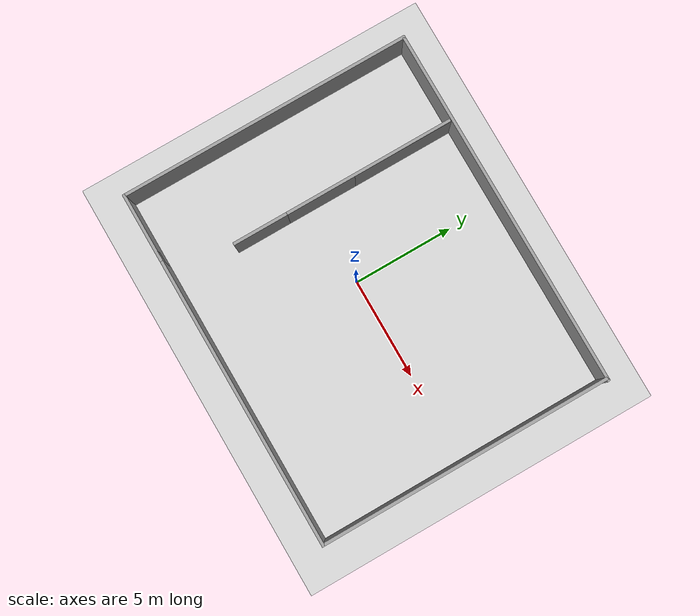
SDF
<sdf version="1.7">
 <world name="default">
  <light name="sun" type="directional">
   <pose>0 0 10 0 -0 0</pose>
   <diffuse>0.8 0.8 0.8 1</diffuse>
   <specular>0.2 0.2 0.2 1</specular>
   <attenuation>
    <range>1000</range>
    <constant>0.9</constant>
    <linear>0.01</linear>
    <quadratic>0.001</quadratic>
   </attenuation>
   <direction>-0.5 0.1 -0.9</direction>
   <spot><inner_angle>0</inner_angle><outer_angle>0</outer_angle><falloff>0</falloff></spot>
  </light>
  <model name="ground_plane">
   <static>1</static>
   <link name="link">
    <collision name="collision">
     <geometry><plane><normal>0 0 1</normal><size>100 100</size></plane></geometry>
     <surface><friction><ode><mu>100</mu><mu2>50</mu2></ode></friction></surface>
    </collision>
    <visual name="visual">
     <cast_shadows>0</cast_shadows>
     <geometry><plane><normal>0 0 1</normal><size>100 100</size></plane></geometry>
     <material>
      <script><uri>file://media/materials/scripts/gazebo.material</uri><name>Gazebo/Grey</name></script>
     </material>
    </visual>
   </link>
  </model>
  <gravity>0 0 -9.8</gravity>
  <magnetic_field>6e-06 2.3e-05 -4.2e-05</magnetic_field>
  <atmosphere type="adiabatic"/>
  <physics type="ode">
   <max_step_size>0.001</max_step_size>
   <real_time_factor>1</real_time_factor>
   <real_time_update_rate>1000</real_time_update_rate>
  </physics>
  <scene><ambient>0.4 0.4 0.4 1</ambient><background>0.7 0.7 0.7 1</background><shadows>1</shadows></scene>
  <audio><device>default</device></audio>
  <spherical_coordinates>
   <surface_model>EARTH_WGS84</surface_model>
   <latitude_deg>0</latitude_deg>
   <longitude_deg>0</longitude_deg>
   <elevation>0</elevation>
   <heading_deg>0</heading_deg>
  </spherical_coordinates>
  <model name="Walls">
   <pose>0.598388 0.080012 0 0 -0 0</pose>
   <link name="Wall_11">
    <collision name="Wall_11_Collision">
     <geometry><box><size>15 0.15 2.5</size></box></geometry>
     <pose>0 0 1.25 0 -0 0</pose>
    </collision>
    <visual name="Wall_11_Visual">
     <pose>0 0 1.25 0 -0 0</pose>
     <geometry><box><size>15 0.15 2.5</size></box></geometry>
     <material>
      <script><uri>file://media/materials/scripts/gazebo.material</uri><name>Gazebo/Grey</name></script>
      <ambient>1 1 1 1</ambient>
     </material>
     <meta><layer>0</layer></meta>
    </visual>
    <pose>1.45931 -7.24751 0 0 -0 0</pose>
   </link>
   <link name="Wall_12">
    <collision name="Wall_12_Collision">
     <geometry><box><size>14.5213 0.15 2.5</size></box></geometry>
     <pose>0 0 1.25 0 -0 0</pose>
    </collision>
    <visual name="Wall_12_Visual">
     <pose>0 0 1.25 0 -0 0</pose>
     <geometry><box><size>14.5213 0.15 2.5</size></box></geometry>
     <material>
      <script><uri>file://media/materials/scripts/gazebo.material</uri><name>Gazebo/Grey</name></script>
      <ambient>1 1 1 1</ambient>
     </material>
     <meta><layer>0</layer></meta>
    </visual>
    <pose>8.88432 0.061877 0 0 -0 1.5708</pose>
   </link>
   <link name="Wall_13">
    <collision name="Wall_13_Collision">
     <geometry><box><size>18 0.15 2.5</size></box></geometry>
     <pose>0 0 1.25 0 -0 0</pose>
    </collision>
    <visual name="Wall_13_Visual">
     <pose>0 0 1.25 0 -0 0</pose>
     <geometry><box><size>18 0.15 2.5</size></box></geometry>
     <material>
      <script><uri>file://media/materials/scripts/gazebo.material</uri><name>Gazebo/Grey</name></script>
      <ambient>1 1 1 1</ambient>
     </material>
     <meta><layer>0</layer></meta>
    </visual>
    <pose>0.040686 7.24751 0 0 -0 3.14159</pose>
   </link>
   <link name="Wall_14">
    <collision name="Wall_14_Collision">
     <geometry><box><size>14.5213 0.15 2.5</size></box></geometry>
     <pose>0 0 1.25 0 -0 0</pose>
    </collision>
    <visual name="Wall_14_Visual">
     <pose>0 0 1.25 0 -0 0</pose>
     <geometry><box><size>14.5213 0.15 2.5</size></box></geometry>
     <material>
      <script><uri>file://media/materials/scripts/gazebo.material</uri><name>Gazebo/Grey</name></script>
      <ambient>1 1 1 1</ambient>
     </material>
     <meta><layer>0</layer></meta>
    </visual>
    <pose>-8.96569 0.061877 0 0 -0 -1.5708</pose>
   </link>
   <link name="Wall_15">
    <collision name="Wall_15_Collision">
     <geometry><box><size>3.5 0.15 2.5</size></box></geometry>
     <pose>0 0 1.25 0 -0 0</pose>
    </collision>
    <visual name="Wall_15_Visual">
     <pose>0 0 1.25 0 -0 0</pose>
     <geometry><box><size>3.5 0.15 2.5</size></box></geometry>
     <material>
      <script><uri>file://media/materials/scripts/gazebo.material</uri><name>Gazebo/Grey</name></script>
      <ambient>1 1 1 1</ambient>
     </material>
     <meta><layer>0</layer></meta>
    </visual>
    <pose>-7.29068 -7.24751 0 0 -0 0</pose>
   </link>
   <link name="Wall_19">
    <collision name="Wall_19_Collision">
     <geometry><box><size>8.5 0.15 2.5</size></box></geometry>
     <pose>0 0 1.25 0 -0 0</pose>
    </collision>
    <visual name="Wall_19_Visual">
     <pose>0 0 1.25 0 -0 0</pose>
     <geometry><box><size>8.5 0.15 2.5</size></box></geometry>
     <material>
      <script><uri>file://media/materials/scripts/gazebo.material</uri><name>Gazebo/Grey</name></script>
      <ambient>1 1 1 1</ambient>
     </material>
     <meta><layer>0</layer></meta>
    </visual>
    <pose>-4.60391 2.89824 0 0 -0 1.5708</pose>
   </link>
   <link name="Wall_20">
    <collision name="Wall_20_Collision">
     <geometry><box><size>11.25 0.15 2.5</size></box></geometry>
     <pose>0 0 1.25 0 -0 0</pose>
    </collision>
    <visual name="Wall_20_Visual">
     <pose>0 0 1.25 0 -0 0</pose>
     <geometry><box><size>11.25 0.15 2.5</size></box></geometry>
     <material>
      <script><uri>file://media/materials/scripts/gazebo.material</uri><name>Gazebo/Grey</name></script>
      <ambient>1 1 1 1</ambient>
     </material>
     <meta><layer>0</layer></meta>
    </visual>
    <pose>-4.60391 1.52324 0 0 -0 -1.5708</pose>
   </link>
   <static>1</static>
  </model>
 </world>
</sdf>
